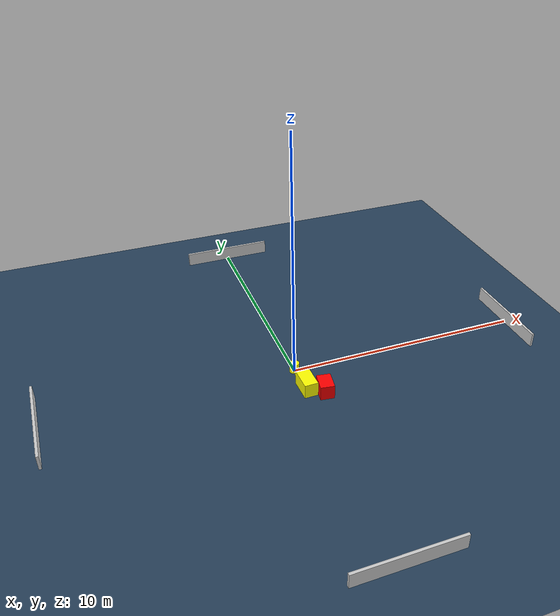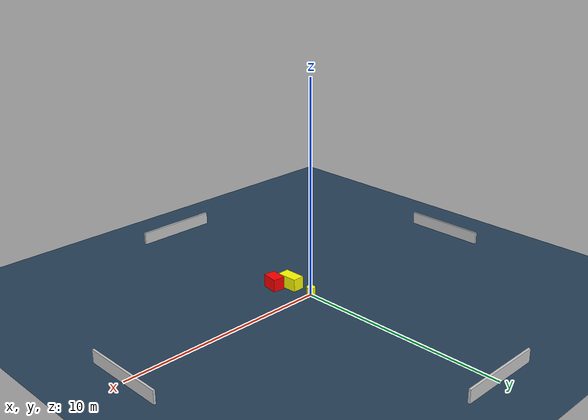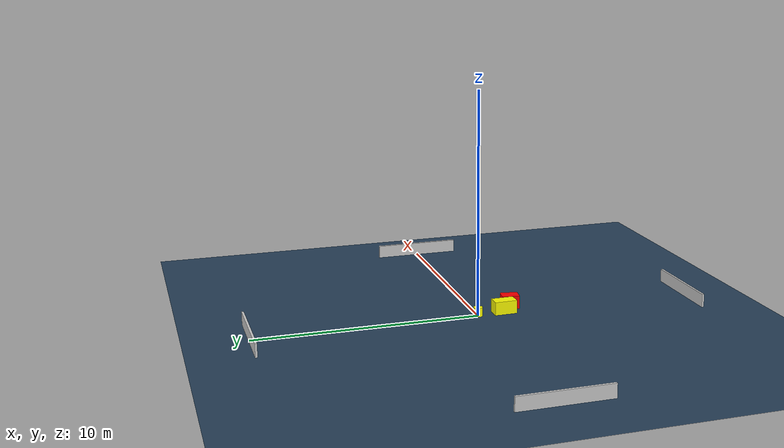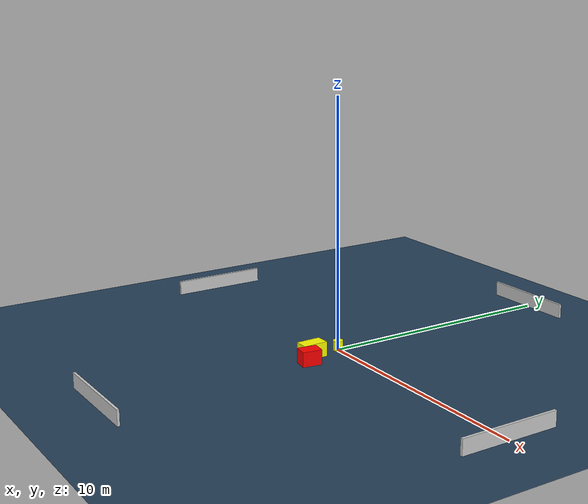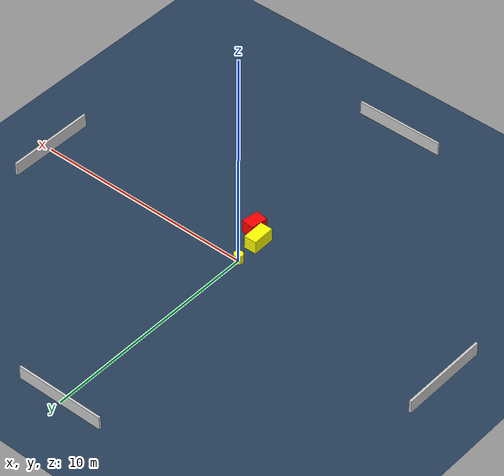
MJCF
<?xml version="1.0" ?>
<mujoco model="generated_environment">
  <option timestep="0.01" integrator="RK4" cone="elliptic"/>
  <default>
    <geom density="1"/>
  </default>
  <asset>
    <texture builtin="gradient" height="3072" name="skybox" rgb1="0.3 0.5 0.7" rgb2="0 0 0" type="skybox" width="512"/>
    <texture builtin="checker" height="300" name="groundplane" rgb1="0.2 0.3 0.4" rgb2="0.1 0.2 0.3" type="2d" width="300"/>
    <material name="groundplane" reflectance="0.2" texrepeat="5 5" texture="groundplane"/>
  </asset>
  <worldbody>
    <light dir="0 0 -1" directional="true" pos="0 0 1.5"/>
    <geom condim="3" friction="0.5 0.005 0.001" material="groundplane" name="floor" pos="0 0 0" size="0 0 0.05" type="plane"/>
    <body name="walls">
      <geom name="wall_1" condim="4" pos="-10.0 0.0 0.3" rgba="0.800000011920929 0.800000011920929 0.800000011920929 1.0" size="0.05 2.0 0.3" type="box"/>
      <geom name="wall_2" condim="4" pos="10.0 0.0 0.3" rgba="0.800000011920929 0.800000011920929 0.800000011920929 1.0" size="0.05 2.0 0.3" type="box"/>
      <geom name="wall_3" condim="4" pos="0.0 -10.0 0.3" rgba="0.800000011920929 0.800000011920929 0.800000011920929 1.0" size="2.0 0.05 0.3" type="box"/>
      <geom name="wall_4" condim="4" pos="0.0 10.0 0.3" rgba="0.800000011920929 0.800000011920929 0.800000011920929 1.0" size="2.0 0.05 0.3" type="box"/>
    </body>
    <body name="robot">
      <joint name="joint_x" type="slide" pos="0 0 0" axis="1 0 0"/>
      <joint name="joint_y" type="slide" pos="0 0 0" axis="0 1 0"/>
      <geom name="robot" type="cylinder" pos="0.0 0.0 0.2" size="0.2 0.2 0.0" mass="5.0" friction="1.0 0.005 0.0001" condim="4" rgba="1.0 1.0 0.0 1.0"/>
    </body>
    <body name="obstacle_1_movable">
      <geom name="obstacle_1_movable" condim="4" pos="0.06507893846680755 -1.244671983517469 0.3" euler="0 0 91.2188554637234" friction="0.0 0.005 0.001" rgba="1.0 1.0 0.0 1.0" size="0.5066455566100856 0.27992150465220633 0.3" type="box" mass="0.1"/>
      <joint type="free"/>
    </body>
    <body name="obstacle_2_static">
      <geom name="obstacle_2_static" condim="4" pos="0.6570435167485555 -1.721805115018995 0.3" euler="0 0 351.4984507578936" friction="0.0 0.005 0.001" rgba="1.0 0.0 0.0 1.0" size="0.2835224698432688 0.39179431173507334 0.3" type="box"/>
    </body>
  </worldbody>
  <actuator>
    <motor name="actuator_x" joint="joint_x" gear="1" ctrlrange="-1 1"/>
    <motor name="actuator_y" joint="joint_y" gear="1" ctrlrange="-1 1"/>
  </actuator>
</mujoco>
